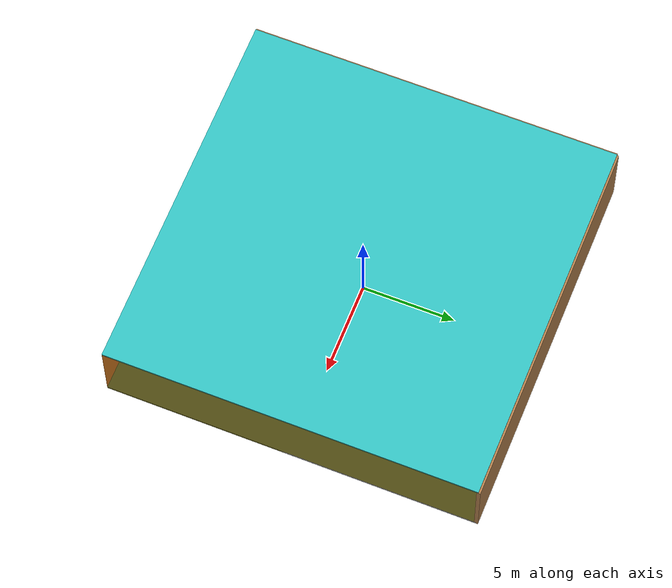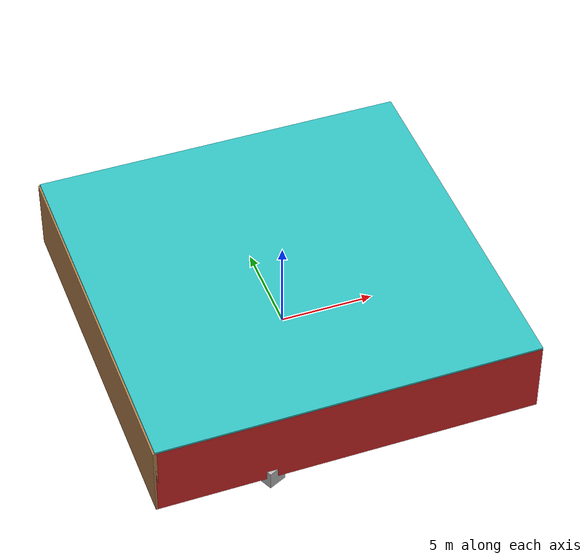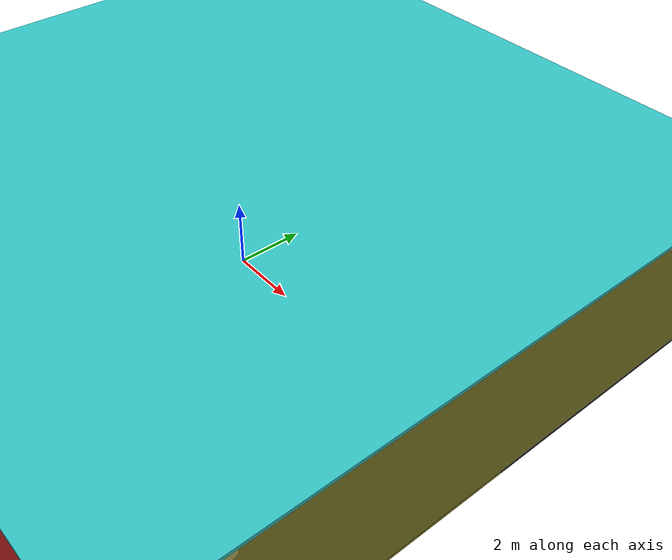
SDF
<sdf version="1.4">
 <world name="default">
  <physics type="ode">
   <max_step_size>0.001</max_step_size>
   <real_time_factor>1</real_time_factor>
   <real_time_update_rate>1000</real_time_update_rate>
   <gravity>0 0 -9.8</gravity>
  </physics>
  <scene><ambient>0.4 0.4 0.4 1</ambient><background>0.7 0.7 0.7 1</background><shadows>1</shadows></scene>
  <model name="Surrounding">
   <static>1</static>
   <link name="Ceiling">
    <collision name="Ceiling_Collision"><geometry><box><size>20 20 0.1</size></box></geometry></collision>
    <visual name="Ceiling_Visual">
     <geometry><box><size>20 20 0.1</size></box></geometry>
     <material>
      <script><uri>file://media/materials/scripts/gazebo.material</uri><name>Gazebo/Turquoise</name></script>
     </material>
    </visual>
    <pose>0 0 4.05 0 0 0</pose>
   </link>
   <link name="Wall_South">
    <collision name="Wall_South_Collision">
     <geometry><box><size>20 0 4</size></box></geometry>
     <pose>0 0 2 0 -0 0</pose>
    </collision>
    <visual name="Wall_South_Visual">
     <pose>0 0 2 0 -0 0</pose>
     <geometry><box><size>20 0 4</size></box></geometry>
     <material>
      <script><uri>file://media/materials/scripts/gazebo.material</uri><name>Gazebo/Red</name></script>
     </material>
    </visual>
    <velocity_decay><linear>0</linear><angular>0</angular></velocity_decay>
    <pose>0 -10 0 0 -0 0</pose>
   </link>
   <link name="Wall_East">
    <collision name="Wall_21_Collision">
     <geometry><box><size>20 0 4</size></box></geometry>
     <pose>0 0 2 0 -0 0</pose>
    </collision>
    <visual name="Wall_21_Visual">
     <pose>0 0 2 0 -0 0</pose>
     <geometry><box><size>20 0 4</size></box></geometry>
     <material>
      <script>
       <uri>file://media/materials/scripts/gazebo.material</uri>
       <name>Gazebo/YellowTransparent</name>
      </script>
     </material>
    </visual>
    <velocity_decay><linear>0</linear><angular>0</angular></velocity_decay>
    <pose>10 0 0 0 -0 1.5708</pose>
   </link>
   <link name="Wall_North">
    <collision name="Wall_22_Collision">
     <geometry><box><size>20 0.2 4</size></box></geometry>
     <pose>0 0 2 0 -0 0</pose>
    </collision>
    <visual name="Wall_22_Visual">
     <pose>0 0 2 0 -0 0</pose>
     <geometry><box><size>20 0.2 4</size></box></geometry>
     <material>
      <script><uri>file://media/materials/scripts/gazebo.material</uri><name>Gazebo/Wood</name></script>
     </material>
    </visual>
    <velocity_decay><linear>0</linear><angular>0</angular></velocity_decay>
    <pose>0 10 0 0 -0 0</pose>
   </link>
   <link name="Wall_West">
    <collision name="Wall_23_Collision">
     <geometry><box><size>20 0.2 4</size></box></geometry>
     <pose>0 0 2 0 -0 0</pose>
    </collision>
    <visual name="Wall_23_Visual">
     <pose>0 0 2 0 -0 0</pose>
     <geometry><box><size>20 0.2 4</size></box></geometry>
     <material>
      <script><uri>file://media/materials/scripts/gazebo.material</uri><name>Gazebo/WoodFloor</name></script>
     </material>
    </visual>
    <velocity_decay><linear>0</linear><angular>0</angular></velocity_decay>
    <pose>-10 0 0 0 0 -1.5708</pose>
   </link>
   <link name="Ground_link">
    <collision name="collision">
     <pose>0 0 .05 0 -0 0</pose>
     <geometry><box><size>20 20 0.1</size></box></geometry>
    </collision>
    <visual name="visual">
     <pose>0 0 .05 0 -0 0</pose>
     <geometry><box><size>20 20 0.1</size></box></geometry>
     <material>
      <script><uri>file://media/materials/scripts/gazebo.material</uri><name>Gazebo/FlatBlack</name></script>
     </material>
    </visual>
   </link>
   <static>1</static>
  </model>
  <spherical_coordinates>
   <surface_model>EARTH_WGS84</surface_model>
   <latitude_deg>0</latitude_deg>
   <longitude_deg>0</longitude_deg>
   <elevation>0</elevation>
   <heading_deg>0</heading_deg>
  </spherical_coordinates>
  <light name="lightball_0" type="diffuse">
   <diffuse>0.8 0.8 0.8 1</diffuse>
   <specular>0.2 0.2 0.2 1</specular>
   <attenuation>
    <range>100</range>
    <constant>0.7</constant>
    <linear>0.01</linear>
    <quadratic>0.001</quadratic>
   </attenuation>
   <direction>-0.5 0.1 -0.9</direction>
   <pose>3.64699620585 -8.2619509714 3.11821240523 0 0 0</pose>
  </light>
  <light name="lightball_1" type="diffuse">
   <diffuse>0.8 0.8 0.8 1</diffuse>
   <specular>0.2 0.2 0.2 1</specular>
   <attenuation>
    <range>100</range>
    <constant>0.7</constant>
    <linear>0.01</linear>
    <quadratic>0.001</quadratic>
   </attenuation>
   <direction>-0.5 0.1 -0.9</direction>
   <pose>8.46487023951 5.31133835803 1.01387963728 0 0 0</pose>
  </light>
  <light name="lightball_2" type="diffuse">
   <diffuse>0.8 0.8 0.8 1</diffuse>
   <specular>0.2 0.2 0.2 1</specular>
   <attenuation>
    <range>100</range>
    <constant>0.7</constant>
    <linear>0.01</linear>
    <quadratic>0.001</quadratic>
   </attenuation>
   <direction>-0.5 0.1 -0.9</direction>
   <pose>8.68845057295 -7.36986843173 1.75165842559 0 0 0</pose>
  </light>
  <light name="lightball_3" type="diffuse">
   <diffuse>0.8 0.8 0.8 1</diffuse>
   <specular>0.2 0.2 0.2 1</specular>
   <attenuation>
    <range>100</range>
    <constant>0.7</constant>
    <linear>0.01</linear>
    <quadratic>0.001</quadratic>
   </attenuation>
   <direction>-0.5 0.1 -0.9</direction>
   <pose>8.43363552906 -9.74742639538 2.4003110633 0 0 0</pose>
  </light>
  <light name="lightball_4" type="diffuse">
   <diffuse>0.8 0.8 0.8 1</diffuse>
   <specular>0.2 0.2 0.2 1</specular>
   <attenuation>
    <range>100</range>
    <constant>0.7</constant>
    <linear>0.01</linear>
    <quadratic>0.001</quadratic>
   </attenuation>
   <direction>-0.5 0.1 -0.9</direction>
   <pose>-9.11867503023 -2.8545661297 3.73449019133 0 0 0</pose>
  </light>
  <light name="lightball_5" type="diffuse">
   <diffuse>0.8 0.8 0.8 1</diffuse>
   <specular>0.2 0.2 0.2 1</specular>
   <attenuation>
    <range>100</range>
    <constant>0.7</constant>
    <linear>0.01</linear>
    <quadratic>0.001</quadratic>
   </attenuation>
   <direction>-0.5 0.1 -0.9</direction>
   <pose>1.20890256619 -9.244105525 1.44026091086 0 0 0</pose>
  </light>
  <light name="lightball_6" type="diffuse">
   <diffuse>0.8 0.8 0.8 1</diffuse>
   <specular>0.2 0.2 0.2 1</specular>
   <attenuation>
    <range>100</range>
    <constant>0.7</constant>
    <linear>0.01</linear>
    <quadratic>0.001</quadratic>
   </attenuation>
   <direction>-0.5 0.1 -0.9</direction>
   <pose>1.54993194274 -2.15774467247 2.01602613988 0 0 0</pose>
  </light>
  <light name="lightball_7" type="diffuse">
   <diffuse>0.8 0.8 0.8 1</diffuse>
   <specular>0.2 0.2 0.2 1</specular>
   <attenuation>
    <range>100</range>
    <constant>0.7</constant>
    <linear>0.01</linear>
    <quadratic>0.001</quadratic>
   </attenuation>
   <direction>-0.5 0.1 -0.9</direction>
   <pose>-7.06579673147 2.21923198774 2.92400969885 0 0 0</pose>
  </light>
  <light name="lightball_8" type="diffuse">
   <diffuse>0.8 0.8 0.8 1</diffuse>
   <specular>0.2 0.2 0.2 1</specular>
   <attenuation>
    <range>100</range>
    <constant>0.7</constant>
    <linear>0.01</linear>
    <quadratic>0.001</quadratic>
   </attenuation>
   <direction>-0.5 0.1 -0.9</direction>
   <pose>-0.48594012344 -8.67325620297 3.31595875747 0 0 0</pose>
  </light>
  <light name="lightball_9" type="diffuse">
   <diffuse>0.8 0.8 0.8 1</diffuse>
   <specular>0.2 0.2 0.2 1</specular>
   <attenuation>
    <range>100</range>
    <constant>0.7</constant>
    <linear>0.01</linear>
    <quadratic>0.001</quadratic>
   </attenuation>
   <direction>-0.5 0.1 -0.9</direction>
   <pose>1.67276210035 -7.20444593223 2.07604453915 0 0 0</pose>
  </light>
  <light name="lightball_10" type="diffuse">
   <diffuse>0.8 0.8 0.8 1</diffuse>
   <specular>0.2 0.2 0.2 1</specular>
   <attenuation>
    <range>100</range>
    <constant>0.7</constant>
    <linear>0.01</linear>
    <quadratic>0.001</quadratic>
   </attenuation>
   <direction>-0.5 0.1 -0.9</direction>
   <pose>5.36496685437 9.44359387222 3.20269785591 0 0 0</pose>
  </light>
  <light name="lightball_11" type="diffuse">
   <diffuse>0.8 0.8 0.8 1</diffuse>
   <specular>0.2 0.2 0.2 1</specular>
   <attenuation>
    <range>100</range>
    <constant>0.7</constant>
    <linear>0.01</linear>
    <quadratic>0.001</quadratic>
   </attenuation>
   <direction>-0.5 0.1 -0.9</direction>
   <pose>-7.14879829811 -1.24192025225 1.28553674858 0 0 0</pose>
  </light>
  <light name="lightball_12" type="diffuse">
   <diffuse>0.8 0.8 0.8 1</diffuse>
   <specular>0.2 0.2 0.2 1</specular>
   <attenuation>
    <range>100</range>
    <constant>0.7</constant>
    <linear>0.01</linear>
    <quadratic>0.001</quadratic>
   </attenuation>
   <direction>-0.5 0.1 -0.9</direction>
   <pose>-2.62642733164 -3.88877297926 0.654030145932 0 0 0</pose>
  </light>
  <light name="lightball_13" type="diffuse">
   <diffuse>0.8 0.8 0.8 1</diffuse>
   <specular>0.2 0.2 0.2 1</specular>
   <attenuation>
    <range>100</range>
    <constant>0.7</constant>
    <linear>0.01</linear>
    <quadratic>0.001</quadratic>
   </attenuation>
   <direction>-0.5 0.1 -0.9</direction>
   <pose>2.59407753468 -0.400263097766 3.32868864647 0 0 0</pose>
  </light>
  <include>
   <uri>model://textured_shapes</uri>
   <pose>-4.6995417001 -8.19688026342 0 0 0 0.434700653158</pose>
  </include>
  <include><uri>model://cabinet</uri><pose>-0.849485238174 4.18588138544 0 0 0 2.41737905835</pose></include>
  <include>
   <uri>model://textured_shapes</uri>
   <pose>1.33867142001 -4.75400664449 0 0 0 0.209723371833</pose>
  </include>
  <include>
   <uri>model://robocup_3Dsim_goal</uri>
   <pose>2.0024675419 1.34606847715 0 0 0 0.630112582476</pose>
  </include>
  <include>
   <uri>model://textured_shapes</uri>
   <pose>7.1168850656 -5.00729971572 0 0 0 0.275431494118</pose>
  </include>
 </world>
</sdf>

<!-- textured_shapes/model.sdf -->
<sdf version="1.6">
  <model name="textured_shapes">
    <pose>0 0 0.5 0 0 0</pose>
    <link name="box">
      <pose>0 -1.5 0 0 0 0</pose>
      <collision name="collision">
        <geometry>
          <box>
            <size>1 1 1</size>
          </box>
        </geometry>
      </collision>
      <visual name="visual">
        <geometry>
          <box>
            <size>1 1 1</size>
          </box>
        </geometry>
        <material>
          <script>
            <uri>model://../model_source/models/textured_shapes/materials/scripts</uri>
            <uri>model://../model_source/models/textured_shapes/materials/textures</uri>
            <name>TexturedShape/Squares</name>
          </script>
        </material>
      </visual>
    </link>
    <link name="sphere">
      <collision name="collision">
        <geometry>
          <sphere>
            <radius>0.5</radius>
          </sphere>
        </geometry>
      </collision>
      <visual name="visual">
        <geometry>
          <sphere>
            <radius>0.5</radius>
          </sphere>
        </geometry>
        <material>
          <script>
            <uri>model://../model_source/models/textured_shapes/materials/scripts</uri>
            <uri>model://../model_source/models/textured_shapes/materials/textures</uri>
            <name>TexturedShape/Squares</name>
          </script>
        </material>
      </visual>
    </link>
    <link name="cylinder">
      <pose>0 1.5 0 0 0 0</pose>
      <collision name="collision">
        <geometry>
          <cylinder>
            <radius>0.5</radius>
            <length>1</length>
          </cylinder>
        </geometry>
      </collision>
      <visual name="visual">
        <geometry>
          <cylinder>
            <radius>0.5</radius>
            <length>1</length>
          </cylinder>
        </geometry>
        <material>
          <script>
            <uri>model://../model_source/models/textured_shapes/materials/scripts</uri>
            <uri>model://../model_source/models/textured_shapes/materials/textures</uri>
            <name>TexturedShape/Squares</name>
          </script>
        </material>
      </visual>
    </link>
  </model>
</sdf>

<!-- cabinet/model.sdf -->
<sdf version="1.5">
  <model name="cabinet">
    <static>true</static>
    <link name="cabinet_bottom_plate">
      <inertial>
        <pose>0 0 -1 0 0 0</pose>
        <inertia>
          <ixx>2.050000</ixx>
          <ixy>0</ixy>
          <ixz>0</ixz>
          <iyy>2.050000</iyy>
          <iyz>0</iyz>
          <izz>2.050000</izz>
        </inertia>
        <mass>25.000000</mass>
      </inertial>
      <collision name="cabinet_bottom_plate_geom">
        <pose>0 0 0.010000 0 0 0</pose>
        <geometry>
          <box>
            <size>0.450000 0.450000 0.020000</size>
          </box>
        </geometry>
      </collision>
      <visual name="cabinet_bottom_plate_geom_visual">
        <pose>0 0 0.010000 0 0 0</pose>
        <geometry>
          <box>
            <size>0.450000 0.450000 0.020000</size>
          </box>
        </geometry>
        <material>
          <script>
            <uri>model://media/materials/scripts/gazebo.material</uri>
            <name>Gazebo/Wood</name>
          </script>
        </material>
      </visual>
      <collision name="cabinet_bottom_plate_geom_cabinet_back_plate">
        <pose>0.235000 0 0.510000 0 0 0</pose>
        <geometry>
          <box>
            <size>0.020000 0.450000 1.020000</size>
          </box>
        </geometry>
      </collision>
      <visual name="cabinet_bottom_plate_geom_cabinet_back_plate_visual">
        <pose>0.235000 0 0.510000 0 0 0</pose>
        <geometry>
          <box>
            <size>0.020000 0.450000 1.020000</size>
          </box>
        </geometry>
        <material>
          <script>
            <uri>model://media/materials/scripts/gazebo.material</uri>
            <name>Gazebo/Wood</name>
          </script>
        </material>
      </visual>
      <collision name="cabinet_bottom_plate_geom_cabinet_left_plate">
        <pose>0 0.235000 0.510000 0 0 0</pose>
        <geometry>
          <box>
            <size>0.450000 0.020000 1.020000</size>
          </box>
        </geometry>
      </collision>
      <visual name="cabinet_bottom_plate_geom_cabinet_left_plate_visual">
        <pose>0 0.235000 0.510000 0 0 0</pose>
        <geometry>
          <box>
            <size>0.450000 0.020000 1.020000</size>
          </box>
        </geometry>
        <material>
          <script>
            <uri>model://media/materials/scripts/gazebo.material</uri>
            <name>Gazebo/Wood</name>
          </script>
        </material>
      </visual>
      <collision name="cabinet_bottom_plate_geom_cabinet_middle_plate">
        <pose>0 0 0.510000 0 0 0</pose>
        <geometry>
          <box>
            <size>0.450000 0.450000 0.020000</size>
          </box>
        </geometry>
      </collision>
      <visual name="cabinet_bottom_plate_geom_cabinet_middle_plate_visual">
        <pose>0 0 0.510000 0 0 0</pose>
        <geometry>
          <box>
            <size>0.450000 0.450000 0.020000</size>
          </box>
        </geometry>
        <material>
          <script>
            <uri>model://media/materials/scripts/gazebo.material</uri>
            <name>Gazebo/Wood</name>
          </script>
        </material>
      </visual>
      <collision name="cabinet_bottom_plate_geom_cabinet_right_plate">
        <pose>0 -0.235000 0.510000 0 0 0</pose>
        <geometry>
          <box>
            <size>0.450000 0.020000 1.020000</size>
          </box>
        </geometry>
      </collision>
      <visual name="cabinet_bottom_plate_geom_cabinet_right_plate_visual">
        <pose>0 -0.235000 0.510000 0 0 0</pose>
        <geometry>
          <box>
            <size>0.450000 0.020000 1.020000</size>
          </box>
        </geometry>
        <material>
          <script>
            <uri>model://media/materials/scripts/gazebo.material</uri>
            <name>Gazebo/Wood</name>
          </script>
        </material>
      </visual>
      <collision name="cabinet_bottom_plate_geom_cabinet_top_plate">
        <pose>0 0 1.010000 0 0 0</pose>
        <geometry>
          <box>
            <size>0.450000 0.450000 0.020000</size>
          </box>
        </geometry>
      </collision>
      <visual name="cabinet_bottom_plate_geom_cabinet_top_plate_visual">
        <pose>0 0 1.010000 0 0 0</pose>
        <geometry>
          <box>
            <size>0.450000 0.450000 0.020000</size>
          </box>
        </geometry>
        <material>
          <script>
            <uri>model://media/materials/scripts/gazebo.material</uri>
            <name>Gazebo/Wood</name>
          </script>
        </material>
      </visual>
    </link>
  </model>
</sdf>

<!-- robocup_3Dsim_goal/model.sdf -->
<sdf version="1.5">
  <model name="robocup_3d_goal">
    <static>true</static>
    <link name="left_post">
      <pose>0 1.05 0.45 0 0 0</pose>
      <collision name="collision">
        <geometry>
          <cylinder>
            <radius>0.05</radius>
            <length>0.9</length>
          </cylinder>
        </geometry>
      </collision>
      <visual name="visual">
        <geometry>
          <cylinder>
            <radius>0.05</radius>
            <length>0.9</length>
          </cylinder>
        </geometry>
        <material>
          <script>
            <uri>file://media/materials/scripts/gazebo.material</uri>
            <name>Gazebo/ZincYellow</name>
          </script>
        </material>
      </visual>
    </link>
    <link name="left_support_horiz_lower">
      <pose>0.30 1.05 0.01 0 0 0</pose>
      <collision name="collision">
        <geometry>
          <box>
            <size>0.50 0.02 0.02</size>
          </box>
        </geometry>
      </collision>
      <visual name="visual">
        <geometry>
          <box>
            <size>0.50 0.02 0.02</size>
          </box>
        </geometry>
        <material>
          <script>
            <uri>file://media/materials/scripts/gazebo.material</uri>
            <name>Gazebo/White</name>
          </script>
        </material>
      </visual>
    </link>
    <link name="left_support_horiz_upper">
      <pose>0.30 1.05 0.79 0 0 0</pose>
      <collision name="collision">
        <geometry>
          <box>
            <size>0.50 0.02 0.02</size>
          </box>
        </geometry>
      </collision>
      <visual name="visual">
        <geometry>
          <box>
            <size>0.50 0.02 0.02</size>
          </box>
        </geometry>
        <material>
          <script>
            <uri>file://media/materials/scripts/gazebo.material</uri>
            <name>Gazebo/White</name>
          </script>
        </material>
      </visual>
    </link>
    <link name="left_support_vertical">
      <pose>0.56 1.05 0.4 0 1.5708 0</pose>
      <collision name="collision">
        <geometry>
          <box>
            <size>0.80 0.02 0.02</size>
          </box>
        </geometry>
      </collision>
      <visual name="visual">
        <geometry>
          <box>
            <size>0.80 0.02 0.02</size>
          </box>
        </geometry>
        <material>
          <script>
            <uri>file://media/materials/scripts/gazebo.material</uri>
            <name>Gazebo/White</name>
          </script>
        </material>
      </visual>
    </link>
    <link name="right_support_horiz_lower">
      <pose>0.30 -1.05 0.01 0 0 0</pose>
      <collision name="collision">
        <geometry>
          <box>
            <size>0.50 0.02 0.02</size>
          </box>
        </geometry>
      </collision>
      <visual name="visual">
        <geometry>
          <box>
            <size>0.50 0.02 0.02</size>
          </box>
        </geometry>
        <material>
          <script>
            <uri>file://media/materials/scripts/gazebo.material</uri>
            <name>Gazebo/White</name>
          </script>
        </material>
      </visual>
    </link>
    <link name="right_support_horiz_upper">
      <pose>0.30 -1.05 0.79 0 0 0</pose>
      <collision name="collision">
        <geometry>
          <box>
            <size>0.50 0.02 0.02</size>
          </box>
        </geometry>
      </collision>
      <visual name="visual">
        <geometry>
          <box>
            <size>0.50 0.02 0.02</size>
          </box>
        </geometry>
        <material>
          <script>
            <uri>file://media/materials/scripts/gazebo.material</uri>
            <name>Gazebo/White</name>
          </script>
        </material>
      </visual>
    </link>
    <link name="right_support_vertical">
      <pose>0.56 -1.05 0.4 0 1.5708 0</pose>
      <collision name="collision">
        <geometry>
          <box>
            <size>0.80 0.02 0.02</size>
          </box>
        </geometry>
      </collision>
      <visual name="visual">
        <geometry>
          <box>
            <size>0.80 0.02 0.02</size>
          </box>
        </geometry>
        <material>
          <script>
            <uri>file://media/materials/scripts/gazebo.material</uri>
            <name>Gazebo/White</name>
          </script>
        </material>
      </visual>
    </link>
    <link name="center_support_horiz_lower">
      <pose>0.56 0 0.01 0 1.5708 0</pose>
      <collision name="collision">
        <geometry>
          <box>
            <size>0.02 2.08 0.02</size>
          </box>
        </geometry>
      </collision>
      <visual name="visual">
        <geometry>
          <box>
            <size>0.02 2.08 0.02</size>
          </box>
        </geometry>
        <material>
          <script>
            <uri>file://media/materials/scripts/gazebo.material</uri>
            <name>Gazebo/White</name>
          </script>
        </material>
      </visual>
    </link>
    <link name="center_support_horiz_upper">
      <pose>0.56 0 0.79 0 1.5708 0</pose>
      <collision name="collision">
        <geometry>
          <box>
            <size>0.02 2.08 0.02</size>
          </box>
        </geometry>
      </collision>
      <visual name="visual">
        <geometry>
          <box>
            <size>0.02 2.08 0.02</size>
          </box>
        </geometry>
        <material>
          <script>
            <uri>file://media/materials/scripts/gazebo.material</uri>
            <name>Gazebo/White</name>
          </script>
        </material>
      </visual>
    </link>
    <link name="right_post">
      <pose>0 -1.05 0.45 0 0 0</pose>
      <collision name="collision">
        <geometry>
          <cylinder>
            <radius>0.05</radius>
            <length>0.9</length>
          </cylinder>
        </geometry>
      </collision>
      <visual name="visual">
        <geometry>
          <cylinder>
            <radius>0.05</radius>
            <length>0.9</length>
          </cylinder>
        </geometry>
        <material>
          <script>
            <uri>file://media/materials/scripts/gazebo.material</uri>
            <name>Gazebo/ZincYellow</name>
          </script>
        </material>
      </visual>
    </link>
    <link name="crossbar">
      <pose>0 0 0.85 1.57 1.57 0</pose>
      <collision name="collision">
        <geometry>
          <cylinder>
            <radius>0.05</radius>
            <length>2.0</length>
          </cylinder>
        </geometry>
      </collision>
      <visual name="visual">
        <geometry>
          <cylinder>
            <radius>0.05</radius>
            <length>2.0</length>
          </cylinder>
        </geometry>
        <material>
          <script>
            <uri>file://media/materials/scripts/gazebo.material</uri>
            <name>Gazebo/ZincYellow</name>
          </script>
        </material>
      </visual>
    </link>
    <link name="center_net">
      <pose>0.56 0 0.40 0 0 0</pose>
      <collision name="collision">
        <geometry>
          <box>
            <size>0.01 2.1 0.80</size>
          </box>
        </geometry>
      </collision>
      <visual name="visual">
        <geometry>
          <box>
            <size>0.01 2.1 0.80</size>
          </box>
        </geometry>
        <material>
          <script>
            <uri>model://../model_source/models/robocup09_spl_field/materials/scripts/</uri>
            <uri>model://../model_source/models/robocup09_spl_field/materials/textures/</uri>
            <name>RoboCup/Net</name>
          </script>
        </material>
      </visual>
    </link>
    <link name="left_net">
      <pose>0.30 1.05 0.40 0 0 0</pose>
      <collision name="collision">
        <geometry>
          <box>
            <size>0.50 0.01 0.76</size>
          </box>
        </geometry>
      </collision>
      <visual name="visual">
        <geometry>
          <box>
            <size>0.50 0.01 0.76</size>
          </box>
        </geometry>
        <material>
          <script>
            <uri>model://../model_source/models/robocup09_spl_field/materials/scripts/</uri>
            <uri>model://../model_source/models/robocup09_spl_field/materials/textures/</uri>
            <name>RoboCup/Net</name>
          </script>
        </material>
      </visual>
    </link>
    <link name="right_net">
      <pose>0.30 -1.05 0.40 0 0 0</pose>
      <collision name="collision">
        <geometry>
          <box>
            <size>0.50 0.01 0.76</size>
          </box>
        </geometry>
      </collision>
      <visual name="visual">
        <geometry>
          <box>
            <size>0.50 0.01 0.76</size>
          </box>
        </geometry>
        <material>
          <script>
            <uri>model://../model_source/models/robocup09_spl_field/materials/scripts/</uri>
            <uri>model://../model_source/models/robocup09_spl_field/materials/textures/</uri>
            <name>RoboCup/Net</name>
          </script>
        </material>
      </visual>
    </link>
  </model>
</sdf>
